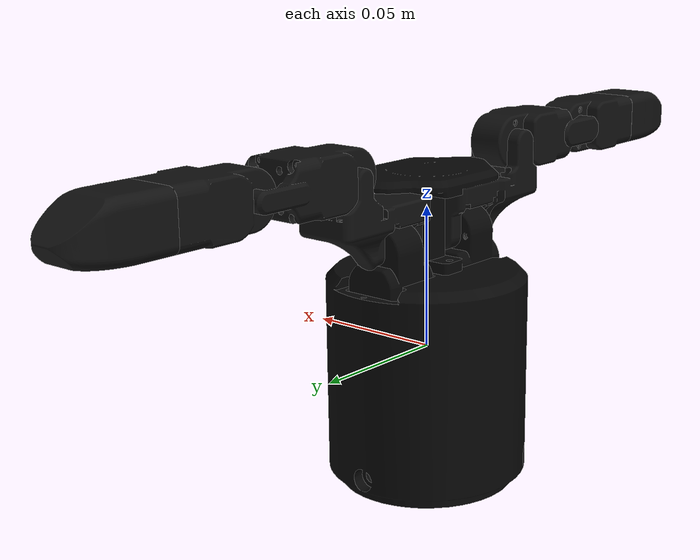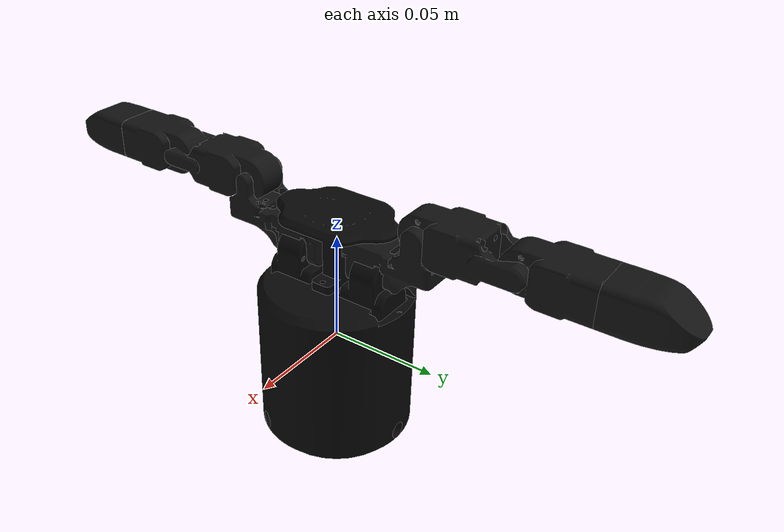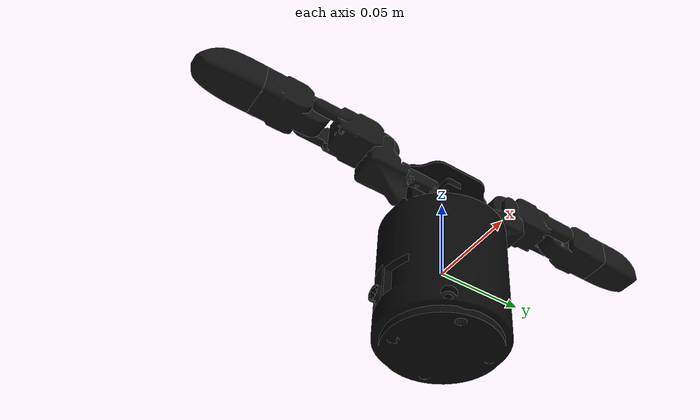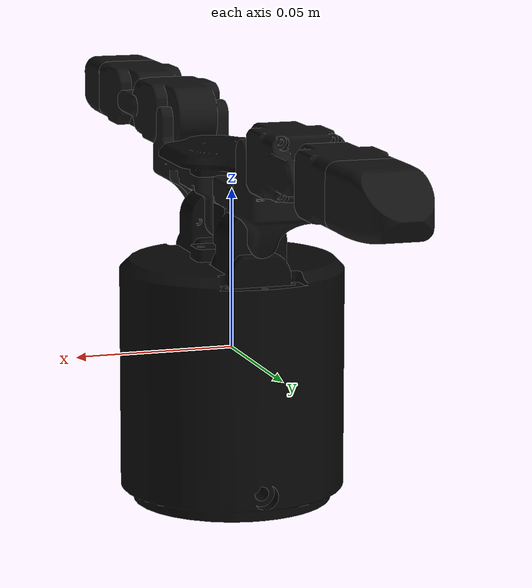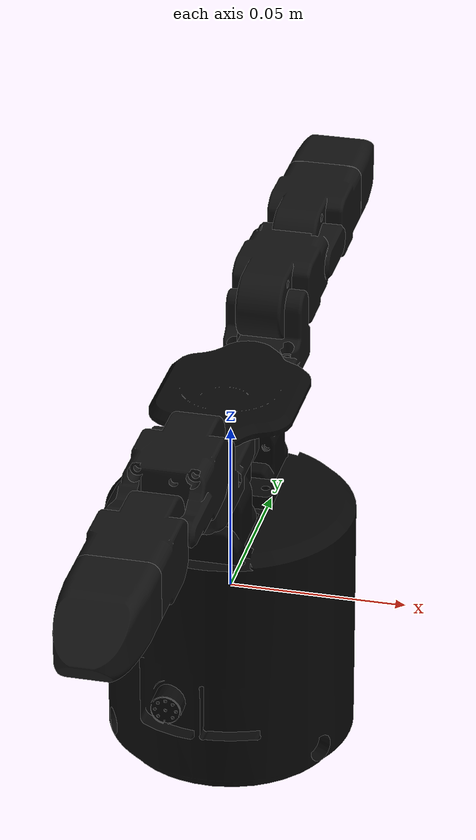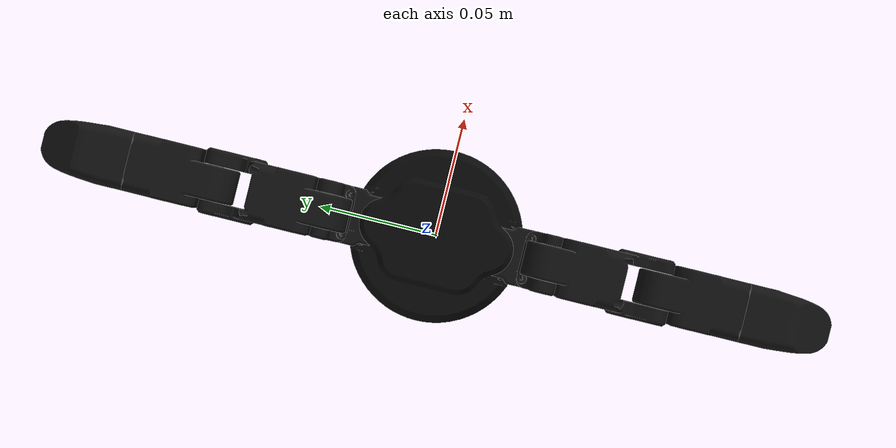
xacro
<?xml version="1.0"?>
<robot name="dg2f" xmlns:xacro="http://www.ros.org/wiki/xacro">

    <xacro:include filename="$(find dg2f_description)/urdf/dg2f.urdf" />

    <link name="base_link" />

    <joint name="base_joint" type="fixed">
        <parent link="base_link"/>
        <child link="l_base"/>
        <origin xyz="0 0 0" rpy="0 0 0"/>
    </joint>

    <ros2_control name="dg2f_mock" type="system">
        <hardware>
            <plugin>mock_components/GenericSystem</plugin>
            <param name="mock_sensor_commands">false</param>
            <param name="position_state_following_offset">0.0</param>
        </hardware>

        <joint name="j_1_1">
            <command_interface name="position" />
            <state_interface name="position"><param name="initial_value">0.0</param></state_interface>
            <state_interface name="velocity" />
        </joint>
        <joint name="j_1_2">
            <command_interface name="position" />
            <state_interface name="position"><param name="initial_value">0.0</param></state_interface>
            <state_interface name="velocity" />
        </joint>
        <joint name="j_1_3">
            <command_interface name="position" />
            <state_interface name="position"><param name="initial_value">0.0</param></state_interface>
            <state_interface name="velocity" />
        </joint>
        <joint name="j_2_1">
            <command_interface name="position" />
            <state_interface name="position"><param name="initial_value">0.0</param></state_interface>
            <state_interface name="velocity" />
        </joint>
        <joint name="j_2_2">
            <command_interface name="position" />
            <state_interface name="position"><param name="initial_value">0.0</param></state_interface>
            <state_interface name="velocity" />
        </joint>
        <joint name="j_2_3">
            <command_interface name="position" />
            <state_interface name="position"><param name="initial_value">0.0</param></state_interface>
            <state_interface name="velocity" />
        </joint>
    </ros2_control>
</robot>

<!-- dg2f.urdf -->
<robot name="dg2f">
  <link name="l_base">
    <visual>
      <origin xyz="0 0 0" rpy="0 0 3.14" />
      <geometry>
        <mesh filename="package://dg2f_description/meshes/dg2f/visual/l_base.dae" />
      </geometry>
      <material name="dg2f_dark">
        <color rgba="0.03 0.03 0.03 1.0"/>
      </material>
    </visual>
    <collision>
      <origin xyz="0 0 0" rpy="0 0 3.14" />
      <geometry>
        <mesh filename="package://dg2f_description/meshes/dg2f/collision/l_base.stl" />
      </geometry>
    </collision>
  </link>

  <link name="l_1_1">
    <visual>
      <origin xyz="0 0 0" rpy="0 0 0" />
      <geometry>
        <mesh filename="package://dg2f_description/meshes/dg2f/visual/l_1.dae" />
      </geometry>
      <material name="dg2f_gray">
        <color rgba="0.07 0.07 0.07 1.0"/>
      </material>
    </visual>
    <collision>
      <origin xyz="0 0 0" rpy="0 0 0" />
      <geometry>
        <mesh filename="package://dg2f_description/meshes/dg2f/collision/l_1.stl" />
      </geometry>
    </collision>
  </link>
  <joint name="j_1_1" type="revolute">
    <origin xyz="0 0.00785 0.038" rpy="0.0 0.0 0.0" />
    <parent link="l_base" />
    <child link="l_1_1" />
    <axis xyz="0 1 0" />
    <limit lower="-1.5708" upper="1.5708" effort="7.644" velocity="3.141592653589793" />
  </joint>
  <link name="l_1_2">
    <visual>
      <origin xyz="0 0 0" rpy="0 0 0" />
      <geometry>
        <mesh filename="package://dg2f_description/meshes/dg2f/visual/l_2.dae" />
      </geometry>
      <material name="dg2f_gray">
        <color rgba="0.07 0.07 0.07 1.0"/>
      </material>
    </visual>
    <collision>
      <origin xyz="0 0 0" rpy="0 0 0" />
      <geometry>
        <mesh filename="package://dg2f_description/meshes/dg2f/collision/l_2.stl" />
      </geometry>
    </collision>
  </link>
  <joint name="j_1_2" type="revolute">
    <origin xyz="0 0.0354 0.02905" rpy="-1.5708 0.0 0.0" />
    <parent link="l_1_1" />
    <child link="l_1_2" />
    <axis xyz="1 0 0" />
    <limit lower="0" upper="3.141593" effort="7.644" velocity="3.141592653589793" />
  </joint>
  <link name="l_1_3">
    <visual>
      <origin xyz="0 0 0" rpy="0 0 0" />
      <geometry>
        <mesh filename="package://dg2f_description/meshes/dg2f/visual/l_3.dae" />
      </geometry>
      <material name="dg2f_gray">
        <color rgba="0.07 0.07 0.07 1.0"/>
      </material>
    </visual>
    <collision>
      <origin xyz="0 0 0" rpy="0 0 0" />
      <geometry>
        <mesh filename="package://dg2f_description/meshes/dg2f/collision/l_3.stl" />
      </geometry>
    </collision>
  </link>
  <joint name="j_1_3" type="revolute">
    <origin xyz="0 0 0.043645" rpy="0.0 0.0 0.0" />
    <parent link="l_1_2" />
    <child link="l_1_3" />
    <axis xyz="1 0 0" />
    <limit lower="-1.5708" upper="1.5708" effort="7.644" velocity="3.141592653589793" />
  </joint>
  <link name="l_1_4">
    <visual>
      <origin xyz="0 0 0" rpy="0 0 0" />
      <geometry>
        <mesh filename="package://dg2f_description/meshes/dg2f/visual/l_tip.dae" />
      </geometry>
      <material name="dg2f_gray">
        <color rgba="0.07 0.07 0.07 1.0"/>
      </material>
    </visual>
    <collision>
      <origin xyz="0 0 0" rpy="0 0 0" />
      <geometry>
        <mesh filename="package://dg2f_description/meshes/dg2f/collision/l_tip.stl" />
      </geometry>
    </collision>
  </link>
  <joint name="j_1_4" type="fixed">
    <origin xyz="0 0 0.031314" rpy="0.0 0.0 0.0" />
    <parent link="l_1_3" />
    <child link="l_1_4" />
    <axis xyz="0 0 1" />
  </joint>

  <link name="l_2_1">
    <visual>
      <origin xyz="0 0 0" rpy="0 0 0" />
      <geometry>
        <mesh filename="package://dg2f_description/meshes/dg2f/visual/l_1.dae" />
      </geometry>
      <material name="dg2f_gray">
        <color rgba="0.07 0.07 0.07 1.0"/>
      </material>
    </visual>
    <collision>
      <origin xyz="0 0 0" rpy="0 0 0" />
      <geometry>
        <mesh filename="package://dg2f_description/meshes/dg2f/collision/l_1.stl" />
      </geometry>
    </collision>
  </link>
  <joint name="j_2_1" type="revolute">
    <origin xyz="0 -0.00785 0.038" rpy="0.0 0.0 3.141593" />
    <parent link="l_base" />
    <child link="l_2_1" />
    <axis xyz="0 1 0" />
    <limit lower="-1.5708" upper="1.5708" effort="7.644" velocity="3.141592653589793" />
  </joint>
  <link name="l_2_2">
    <visual>
      <origin xyz="0 0 0" rpy="0 0 0" />
      <geometry>
        <mesh filename="package://dg2f_description/meshes/dg2f/visual/l_2.dae" />
      </geometry>
      <material name="dg2f_gray">
        <color rgba="0.07 0.07 0.07 1.0"/>
      </material>
    </visual>
    <collision>
      <origin xyz="0 0 0" rpy="0 0 0" />
      <geometry>
        <mesh filename="package://dg2f_description/meshes/dg2f/collision/l_2.stl" />
      </geometry>
    </collision>
  </link>
  <joint name="j_2_2" type="revolute">
    <origin xyz="0 0.0354 0.02905" rpy="-1.5708 0.0 0.0" />
    <parent link="l_2_1" />
    <child link="l_2_2" />
    <axis xyz="1 0 0" />
    <limit lower="0" upper="3.141593" effort="7.644" velocity="3.141592653589793" />
  </joint>
  <link name="l_2_3">
    <visual>
      <origin xyz="0 0 0" rpy="0 0 0" />
      <geometry>
        <mesh filename="package://dg2f_description/meshes/dg2f/visual/l_3.dae" />
      </geometry>
      <material name="dg2f_gray">
        <color rgba="0.07 0.07 0.07 1.0"/>
      </material>
    </visual>
    <collision>
      <origin xyz="0 0 0" rpy="0 0 0" />
      <geometry>
        <mesh filename="package://dg2f_description/meshes/dg2f/collision/l_3.stl" />
      </geometry>
    </collision>
  </link>
  <!--joint 1-->
  <joint name="j_2_3" type="revolute">
    <origin xyz="0 0 0.043645" rpy="0.0 0.0 0.0" />
    <parent link="l_2_2" />
    <child link="l_2_3" />
    <axis xyz="1 0 0" />
    <limit lower="-1.5708" upper="1.5708" effort="7.644" velocity="3.141592653589793" />
  </joint>
  <link name="l_2_4">
    <visual>
      <origin xyz="0 0 0" rpy="0 0 0" />
      <geometry>
        <mesh filename="package://dg2f_description/meshes/dg2f/visual/l_tip.dae" />
      </geometry>
      <material name="dg2f_gray">
        <color rgba="0.07 0.07 0.07 1.0"/>
      </material>
    </visual>
    <collision>
      <origin xyz="0 0 0" rpy="0 0 0" />
      <geometry>
        <mesh filename="package://dg2f_description/meshes/dg2f/collision/l_tip.stl" />
      </geometry>
    </collision>
  </link>
  <joint name="j_2_4" type="fixed">
    <origin xyz="0 0 0.031314" rpy="0.0 0.0 0.0" />
    <parent link="l_2_3" />
    <child link="l_2_4" />
    <axis xyz="0 0 1" />
  </joint>
</robot>
